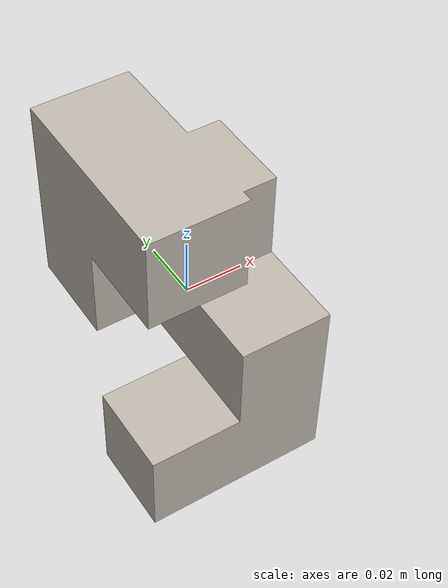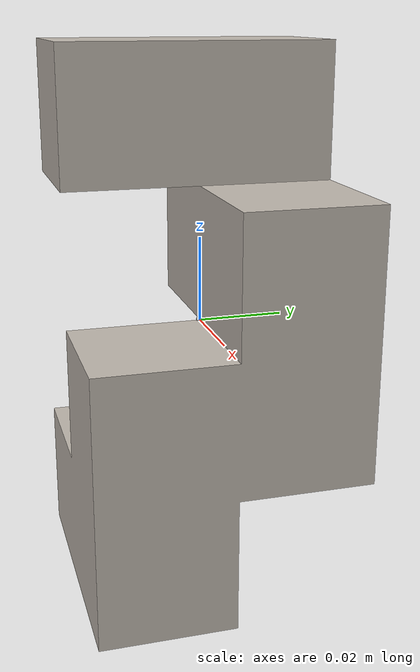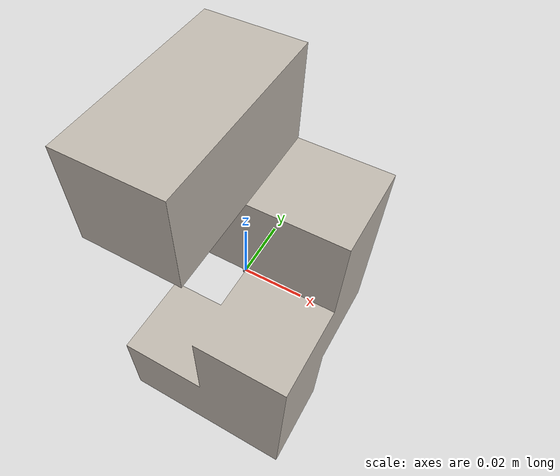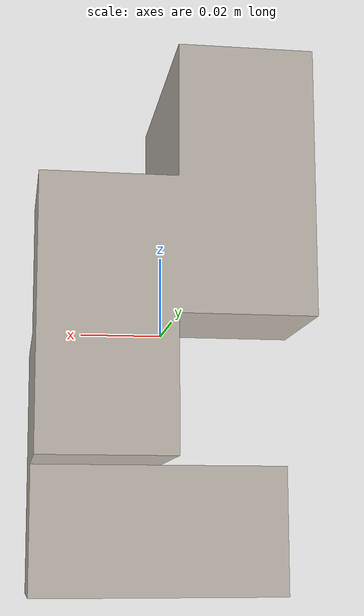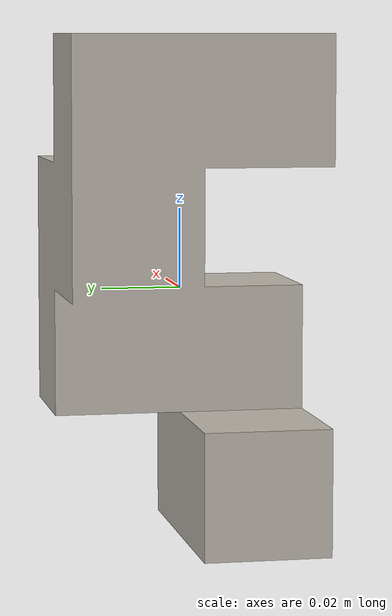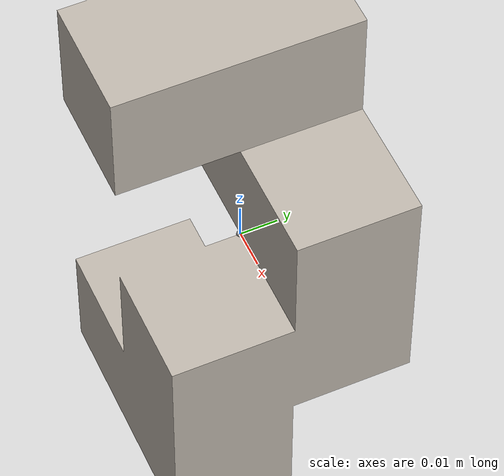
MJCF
<?xml version="1.0" encoding="UTF-8"?>
<mujoco model="aprilcube_voxel_target">
  <!-- Bounding box: 64 x 64 x 128 mm -->
  <!-- Origin at target center, units in meters -->

  <compiler angle="radian" meshdir="."/>

  <asset>
    <texture name="cube_tex" type="2d" file="cube_atlas.png"/>
    <material name="cube_mat" texture="cube_tex" specular="0.1" shininess="0.1"/>
    <mesh name="cube_mesh" file="cube.obj"/>
  </asset>

  <worldbody>
    <body name="cube" pos="0 0 0">
      <freejoint name="cube_joint"/>
      <geom name="cube_visual" type="mesh" mesh="cube_mesh" material="cube_mat" contype="0" conaffinity="0" group="1" density="0"/>
      <geom name="step_0_front_collision" type="box" pos="0.000000 -0.016000 -0.048000" size="0.032000 0.016000 0.016000" density="1250" rgba="0.5 0.5 0.5 0" contype="1" conaffinity="1" group="2"/>
      <geom name="step_1_right_collision" type="box" pos="0.016000 0.000000 -0.016000" size="0.016000 0.032000 0.016000" density="1250" rgba="0.5 0.5 0.5 0" contype="1" conaffinity="1" group="2"/>
      <geom name="step_2_back_collision" type="box" pos="0.000000 0.016000 0.016000" size="0.032000 0.016000 0.016000" density="1250" rgba="0.5 0.5 0.5 0" contype="1" conaffinity="1" group="2"/>
      <geom name="step_3_left_collision" type="box" pos="-0.016000 0.000000 0.048000" size="0.016000 0.032000 0.016000" density="1250" rgba="0.5 0.5 0.5 0" contype="1" conaffinity="1" group="2"/>
      <site name="cube_center" pos="0 0 0" size="0.001"/>
    </body>
  </worldbody>
</mujoco>
